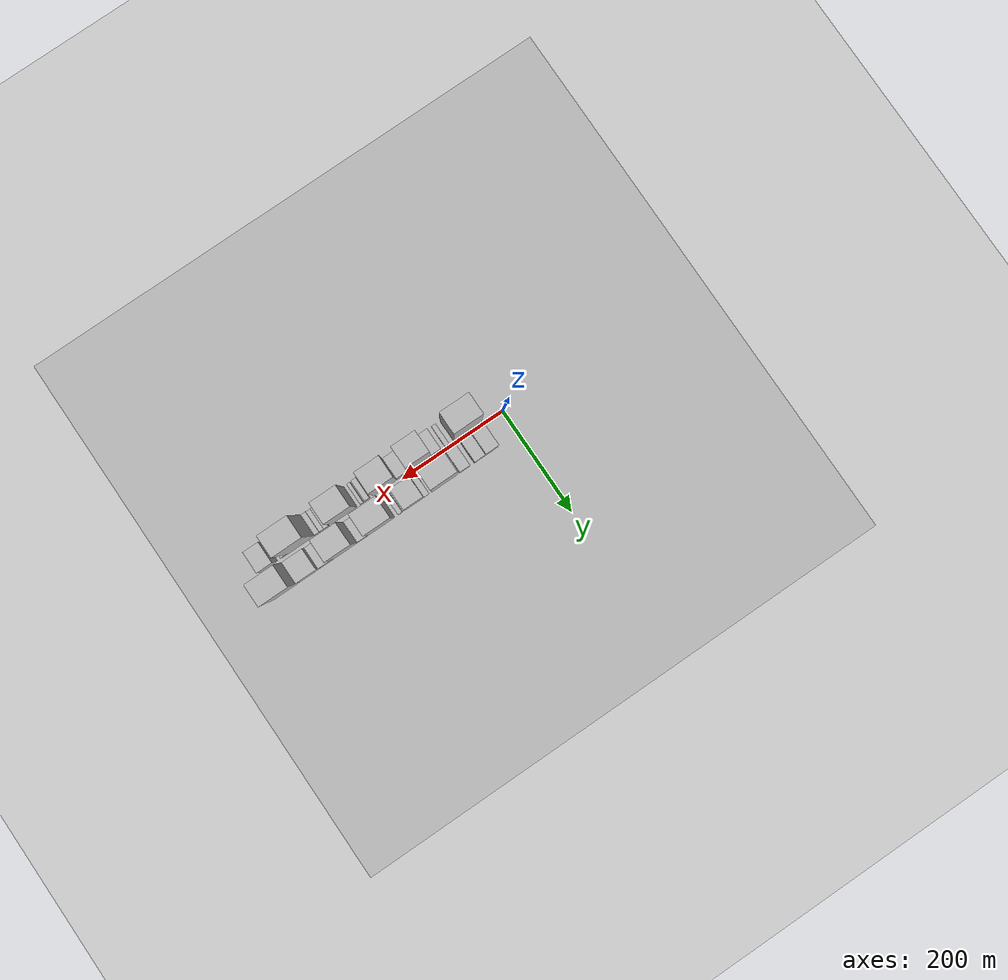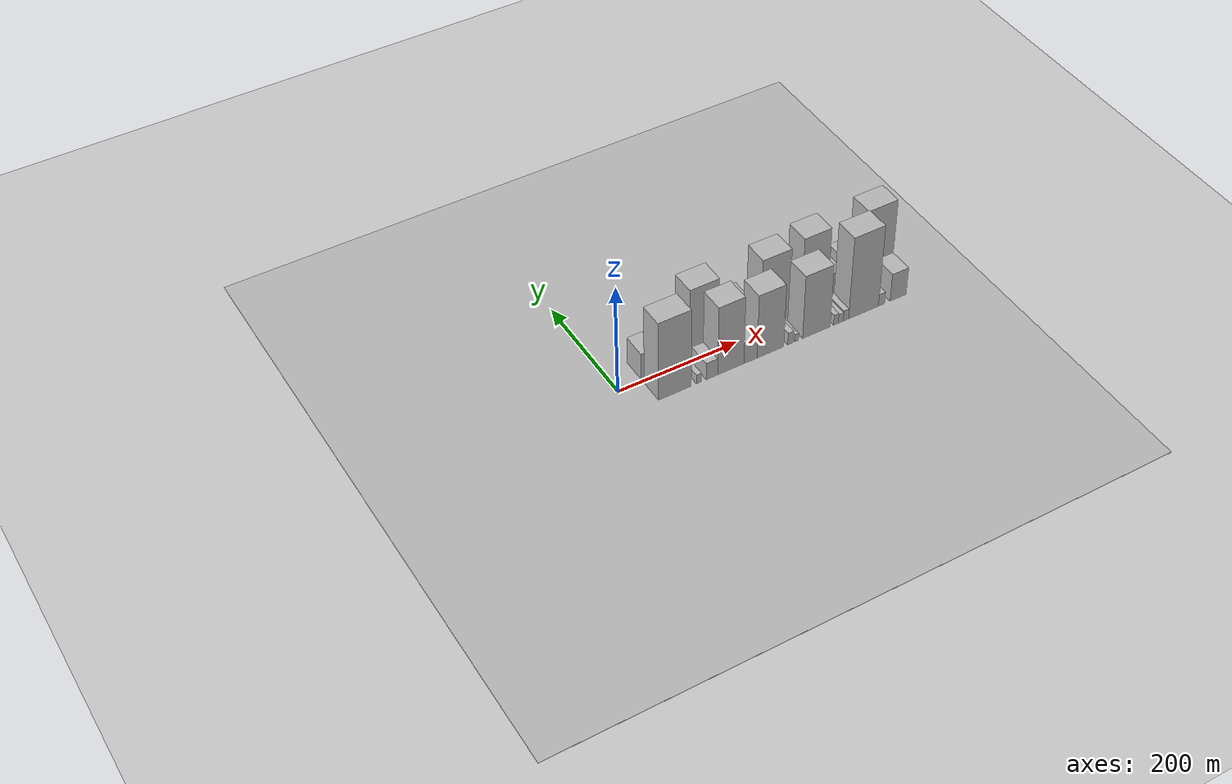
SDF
<?xml version="1.0" encoding="utf-8"?>

<sdf version="1.6">

   <world name="default">

      <gui fullscreen="0">

         <camera name="user_camera">

            <pose>-15 0 4.57585 0 0 0</pose>

            <view_controller>orbit</view_controller>

         </camera>

      </gui>

      <scene>

         <sky>

           <clouds>

             <speed>12</speed>

           </clouds>

         </sky>

         <ambient>0.4 0.4 0.4 1</ambient>

         <background>0.7 0.7 0.7 1</background>

         <shadows>1</shadows>

      </scene>

      <gravity>0 0 -9.8066</gravity>

      <magnetic_field>6e-06 2.3e-05 -4.2e-05</magnetic_field>

      <physics default="0" name="default_physics" type="ode">

         <ode>

            <solver>

               <type>quick</type>

               <iters>10</iters>

               <sor>1.0</sor>

               <use_dynamic_moi_rescaling>0</use_dynamic_moi_rescaling>

            </solver>

            <constraints>

               <cfm>0</cfm>

               <erp>0.2</erp>

               <contact_max_correcting_vel>100</contact_max_correcting_vel>

               <contact_surface_layer>0.001</contact_surface_layer>

            </constraints>

         </ode>

         <max_step_size>0.004</max_step_size>

         <real_time_factor>1</real_time_factor>

         <real_time_update_rate>250</real_time_update_rate>

      </physics>

      <light name="sun" type="directional">

         <cast_shadows>1</cast_shadows>

         <pose>0 0 10 0 0 0</pose>

         <diffuse>0.8 0.8 0.8 1</diffuse>

         <specular>0.2 0.2 0.2 1</specular>

         <attenuation>

            <range>1000</range>

            <constant>0.9</constant>

            <linear>0.01</linear>

            <quadratic>0.001</quadratic>

         </attenuation>

         <direction>-0.5 0.1 -0.9</direction>

      </light>

      <include>

         <name>ground_plane_1</name>

         <uri>model://HANNAS_ground_plane</uri>

         <pose>0 0 0  0 0 0</pose>

      </include>

      <include>

         <name>ground_plane_2</name>

         <uri>model://HANNAS_ground_plane</uri>

         <pose>100 0 0  0 0 0</pose>

      </include>

      <model name="building_1">

         <static>1</static>

         <pose frame="">52.8574 24.5000 0 0.000000 0.000000 1.570796</pose>

         <link name="link">

            <pose frame="">0 0 25.50 0 0 0</pose>

            <collision name="collision">

               <geometry>

                  <box>

                     <size>40.0000 25.7147 51.0000</size>

                  </box>

               </geometry>

               <max_contacts>10</max_contacts>

               <surface>

                  <contact>

                     <ode/>

                  </contact>

                  <bounce/>

                  <friction>

                     <torsional>

                        <ode/>

                     </torsional>

                     <ode/>

                  </friction>

               </surface>

            </collision>

            <visual name="visual">

               <cast_shadows>0</cast_shadows>

               <geometry>

                  <box>

                     <size>40.0000 25.7147 51.0000</size>

                  </box>

               </geometry>

               <material>

                  <script>

                     <uri>model://HANNAS_wall/materials/scripts</uri>

                     <uri>model://HANNAS_wall/materials/textures</uri>

                     <name>vrc/HANNAS_wall</name>

                  </script>

               </material>

            </visual>

            <self_collide>0</self_collide>

            <enable_wind>0</enable_wind>

            <kinematic>0</kinematic>

         </link>

      </model>

      <model name="building_2">

         <static>1</static>

         <pose frame="">76.3778 24.5000 0 0.000000 0.000000 1.570796</pose>

         <link name="link">

            <pose frame="">0 0 18.00 0 0 0</pose>

            <collision name="collision">

               <geometry>

                  <box>

                     <size>40.0000 21.3261 36.0000</size>

                  </box>

               </geometry>

               <max_contacts>10</max_contacts>

               <surface>

                  <contact>

                     <ode/>

                  </contact>

                  <bounce/>

                  <friction>

                     <torsional>

                        <ode/>

                     </torsional>

                     <ode/>

                  </friction>

               </surface>

            </collision>

            <visual name="visual">

               <cast_shadows>0</cast_shadows>

               <geometry>

                  <box>

                     <size>40.0000 21.3261 36.0000</size>

                  </box>

               </geometry>

               <material>

                  <script>

                     <uri>model://HANNAS_wall/materials/scripts</uri>

                     <uri>model://HANNAS_wall/materials/textures</uri>

                     <name>vrc/HANNAS_wall</name>

                  </script>

               </material>

            </visual>

            <self_collide>0</self_collide>

            <enable_wind>0</enable_wind>

            <kinematic>0</kinematic>

         </link>

      </model>

      <model name="building_3">

         <static>1</static>

         <pose frame="">106.2204 24.5000 0 0.000000 0.000000 1.570796</pose>

         <link name="link">

            <pose frame="">0 0 19.50 0 0 0</pose>

            <collision name="collision">

               <geometry>

                  <box>

                     <size>40.0000 20.3591 39.0000</size>

                  </box>

               </geometry>

               <max_contacts>10</max_contacts>

               <surface>

                  <contact>

                     <ode/>

                  </contact>

                  <bounce/>

                  <friction>

                     <torsional>

                        <ode/>

                     </torsional>

                     <ode/>

                  </friction>

               </surface>

            </collision>

            <visual name="visual">

               <cast_shadows>0</cast_shadows>

               <geometry>

                  <box>

                     <size>40.0000 20.3591 39.0000</size>

                  </box>

               </geometry>

               <material>

                  <script>

                     <uri>model://HANNAS_wall/materials/scripts</uri>

                     <uri>model://HANNAS_wall/materials/textures</uri>

                     <name>vrc/HANNAS_wall</name>

                  </script>

               </material>

            </visual>

            <self_collide>0</self_collide>

            <enable_wind>0</enable_wind>

            <kinematic>0</kinematic>

         </link>

      </model>

      <model name="building_4">

         <static>1</static>

         <pose frame="">146.4142 24.5000 0 0.000000 0.000000 1.570796</pose>

         <link name="link">

            <pose frame="">0 0 67.50 0 0 0</pose>

            <collision name="collision">

               <geometry>

                  <box>

                     <size>40.0000 50.0285 135.0000</size>

                  </box>

               </geometry>

               <max_contacts>10</max_contacts>

               <surface>

                  <contact>

                     <ode/>

                  </contact>

                  <bounce/>

                  <friction>

                     <torsional>

                        <ode/>

                     </torsional>

                     <ode/>

                  </friction>

               </surface>

            </collision>

            <visual name="visual">

               <cast_shadows>0</cast_shadows>

               <geometry>

                  <box>

                     <size>40.0000 50.0285 135.0000</size>

                  </box>

               </geometry>

               <material>

                  <script>

                     <uri>model://HANNAS_wall/materials/scripts</uri>

                     <uri>model://HANNAS_wall/materials/textures</uri>

                     <name>vrc/HANNAS_wall</name>

                  </script>

               </material>

            </visual>

            <self_collide>0</self_collide>

            <enable_wind>0</enable_wind>

            <kinematic>0</kinematic>

         </link>

      </model>

      <model name="building_5">

         <static>1</static>

         <pose frame="">181.6122 24.5000 0 0.000000 0.000000 1.570796</pose>

         <link name="link">

            <pose frame="">0 0 10.50 0 0 0</pose>

            <collision name="collision">

               <geometry>

                  <box>

                     <size>40.0000 10.3676 21.0000</size>

                  </box>

               </geometry>

               <max_contacts>10</max_contacts>

               <surface>

                  <contact>

                     <ode/>

                  </contact>

                  <bounce/>

                  <friction>

                     <torsional>

                        <ode/>

                     </torsional>

                     <ode/>

                  </friction>

               </surface>

            </collision>

            <visual name="visual">

               <cast_shadows>0</cast_shadows>

               <geometry>

                  <box>

                     <size>40.0000 10.3676 21.0000</size>

                  </box>

               </geometry>

               <material>

                  <script>

                     <uri>model://HANNAS_wall/materials/scripts</uri>

                     <uri>model://HANNAS_wall/materials/textures</uri>

                     <name>vrc/HANNAS_wall</name>

                  </script>

               </material>

            </visual>

            <self_collide>0</self_collide>

            <enable_wind>0</enable_wind>

            <kinematic>0</kinematic>

         </link>

      </model>

      <model name="building_6">

         <static>1</static>

         <pose frame="">205.6074 24.5000 0 0.000000 0.000000 1.570796</pose>

         <link name="link">

            <pose frame="">0 0 36.00 0 0 0</pose>

            <collision name="collision">

               <geometry>

                  <box>

                     <size>40.0000 37.6228 72.0000</size>

                  </box>

               </geometry>

               <max_contacts>10</max_contacts>

               <surface>

                  <contact>

                     <ode/>

                  </contact>

                  <bounce/>

                  <friction>

                     <torsional>

                        <ode/>

                     </torsional>

                     <ode/>

                  </friction>

               </surface>

            </collision>

            <visual name="visual">

               <cast_shadows>0</cast_shadows>

               <geometry>

                  <box>

                     <size>40.0000 37.6228 72.0000</size>

                  </box>

               </geometry>

               <material>

                  <script>

                     <uri>model://HANNAS_wall/materials/scripts</uri>

                     <uri>model://HANNAS_wall/materials/textures</uri>

                     <name>vrc/HANNAS_wall</name>

                  </script>

               </material>

            </visual>

            <self_collide>0</self_collide>

            <enable_wind>0</enable_wind>

            <kinematic>0</kinematic>

         </link>

      </model>

      <model name="building_7">

         <static>1</static>

         <pose frame="">233.5622 24.5000 0 0.000000 0.000000 1.570796</pose>

         <link name="link">

            <pose frame="">0 0 9.00 0 0 0</pose>

            <collision name="collision">

               <geometry>

                  <box>

                     <size>40.0000 8.2868 18.0000</size>

                  </box>

               </geometry>

               <max_contacts>10</max_contacts>

               <surface>

                  <contact>

                     <ode/>

                  </contact>

                  <bounce/>

                  <friction>

                     <torsional>

                        <ode/>

                     </torsional>

                     <ode/>

                  </friction>

               </surface>

            </collision>

            <visual name="visual">

               <cast_shadows>0</cast_shadows>

               <geometry>

                  <box>

                     <size>40.0000 8.2868 18.0000</size>

                  </box>

               </geometry>

               <material>

                  <script>

                     <uri>model://HANNAS_wall/materials/scripts</uri>

                     <uri>model://HANNAS_wall/materials/textures</uri>

                     <name>vrc/HANNAS_wall</name>

                  </script>

               </material>

            </visual>

            <self_collide>0</self_collide>

            <enable_wind>0</enable_wind>

            <kinematic>0</kinematic>

         </link>

      </model>

      <model name="building_8">

         <static>1</static>

         <pose frame="">269.6419 24.5000 0 0.000000 0.000000 1.570796</pose>

         <link name="link">

            <pose frame="">0 0 67.50 0 0 0</pose>

            <collision name="collision">

               <geometry>

                  <box>

                     <size>40.0000 49.8725 135.0000</size>

                  </box>

               </geometry>

               <max_contacts>10</max_contacts>

               <surface>

                  <contact>

                     <ode/>

                  </contact>

                  <bounce/>

                  <friction>

                     <torsional>

                        <ode/>

                     </torsional>

                     <ode/>

                  </friction>

               </surface>

            </collision>

            <visual name="visual">

               <cast_shadows>0</cast_shadows>

               <geometry>

                  <box>

                     <size>40.0000 49.8725 135.0000</size>

                  </box>

               </geometry>

               <material>

                  <script>

                     <uri>model://HANNAS_wall/materials/scripts</uri>

                     <uri>model://HANNAS_wall/materials/textures</uri>

                     <name>vrc/HANNAS_wall</name>

                  </script>

               </material>

            </visual>

            <self_collide>0</self_collide>

            <enable_wind>0</enable_wind>

            <kinematic>0</kinematic>

         </link>

      </model>

      <model name="building_9">

         <static>1</static>

         <pose frame="">306.7515 24.5000 0 0.000000 0.000000 1.570796</pose>

         <link name="link">

            <pose frame="">0 0 18.00 0 0 0</pose>

            <collision name="collision">

               <geometry>

                  <box>

                     <size>40.0000 18.3467 36.0000</size>

                  </box>

               </geometry>

               <max_contacts>10</max_contacts>

               <surface>

                  <contact>

                     <ode/>

                  </contact>

                  <bounce/>

                  <friction>

                     <torsional>

                        <ode/>

                     </torsional>

                     <ode/>

                  </friction>

               </surface>

            </collision>

            <visual name="visual">

               <cast_shadows>0</cast_shadows>

               <geometry>

                  <box>

                     <size>40.0000 18.3467 36.0000</size>

                  </box>

               </geometry>

               <material>

                  <script>

                     <uri>model://HANNAS_wall/materials/scripts</uri>

                     <uri>model://HANNAS_wall/materials/textures</uri>

                     <name>vrc/HANNAS_wall</name>

                  </script>

               </material>

            </visual>

            <self_collide>0</self_collide>

            <enable_wind>0</enable_wind>

            <kinematic>0</kinematic>

         </link>

      </model>

      <model name="building_10">

         <static>1</static>

         <pose frame="">339.5666 24.5000 0 0.000000 0.000000 1.570796</pose>

         <link name="link">

            <pose frame="">0 0 72.00 0 0 0</pose>

            <collision name="collision">

               <geometry>

                  <box>

                     <size>40.0000 47.2835 144.0000</size>

                  </box>

               </geometry>

               <max_contacts>10</max_contacts>

               <surface>

                  <contact>

                     <ode/>

                  </contact>

                  <bounce/>

                  <friction>

                     <torsional>

                        <ode/>

                     </torsional>

                     <ode/>

                  </friction>

               </surface>

            </collision>

            <visual name="visual">

               <cast_shadows>0</cast_shadows>

               <geometry>

                  <box>

                     <size>40.0000 47.2835 144.0000</size>

                  </box>

               </geometry>

               <material>

                  <script>

                     <uri>model://HANNAS_wall/materials/scripts</uri>

                     <uri>model://HANNAS_wall/materials/textures</uri>

                     <name>vrc/HANNAS_wall</name>

                  </script>

               </material>

            </visual>

            <self_collide>0</self_collide>

            <enable_wind>0</enable_wind>

            <kinematic>0</kinematic>

         </link>

      </model>

      <model name="building_11">

         <static>1</static>

         <pose frame="">376.2026 24.5000 0 0.000000 0.000000 1.570796</pose>

         <link name="link">

            <pose frame="">0 0 25.50 0 0 0</pose>

            <collision name="collision">

               <geometry>

                  <box>

                     <size>40.0000 25.9887 51.0000</size>

                  </box>

               </geometry>

               <max_contacts>10</max_contacts>

               <surface>

                  <contact>

                     <ode/>

                  </contact>

                  <bounce/>

                  <friction>

                     <torsional>

                        <ode/>

                     </torsional>

                     <ode/>

                  </friction>

               </surface>

            </collision>

            <visual name="visual">

               <cast_shadows>0</cast_shadows>

               <geometry>

                  <box>

                     <size>40.0000 25.9887 51.0000</size>

                  </box>

               </geometry>

               <material>

                  <script>

                     <uri>model://HANNAS_wall/materials/scripts</uri>

                     <uri>model://HANNAS_wall/materials/textures</uri>

                     <name>vrc/HANNAS_wall</name>

                  </script>

               </material>

            </visual>

            <self_collide>0</self_collide>

            <enable_wind>0</enable_wind>

            <kinematic>0</kinematic>

         </link>

      </model>

      <model name="building_12">

         <static>1</static>

         <pose frame="">408.6125 24.5000 0 0.000000 0.000000 1.570796</pose>

         <link name="link">

            <pose frame="">0 0 36.00 0 0 0</pose>

            <collision name="collision">

               <geometry>

                  <box>

                     <size>40.0000 38.8311 72.0000</size>

                  </box>

               </geometry>

               <max_contacts>10</max_contacts>

               <surface>

                  <contact>

                     <ode/>

                  </contact>

                  <bounce/>

                  <friction>

                     <torsional>

                        <ode/>

                     </torsional>

                     <ode/>

                  </friction>

               </surface>

            </collision>

            <visual name="visual">

               <cast_shadows>0</cast_shadows>

               <geometry>

                  <box>

                     <size>40.0000 38.8311 72.0000</size>

                  </box>

               </geometry>

               <material>

                  <script>

                     <uri>model://HANNAS_wall/materials/scripts</uri>

                     <uri>model://HANNAS_wall/materials/textures</uri>

                     <name>vrc/HANNAS_wall</name>

                  </script>

               </material>

            </visual>

            <self_collide>0</self_collide>

            <enable_wind>0</enable_wind>

            <kinematic>0</kinematic>

         </link>

      </model>

      <model name="building_13">

         <static>1</static>

         <pose frame="">454.2972 24.5000 0 0.000000 0.000000 1.570796</pose>

         <link name="link">

            <pose frame="">0 0 73.50 0 0 0</pose>

            <collision name="collision">

               <geometry>

                  <box>

                     <size>40.0000 52.5383 147.0000</size>

                  </box>

               </geometry>

               <max_contacts>10</max_contacts>

               <surface>

                  <contact>

                     <ode/>

                  </contact>

                  <bounce/>

                  <friction>

                     <torsional>

                        <ode/>

                     </torsional>

                     <ode/>

                  </friction>

               </surface>

            </collision>

            <visual name="visual">

               <cast_shadows>0</cast_shadows>

               <geometry>

                  <box>

                     <size>40.0000 52.5383 147.0000</size>

                  </box>

               </geometry>

               <material>

                  <script>

                     <uri>model://HANNAS_wall/materials/scripts</uri>

                     <uri>model://HANNAS_wall/materials/textures</uri>

                     <name>vrc/HANNAS_wall</name>

                  </script>

               </material>

            </visual>

            <self_collide>0</self_collide>

            <enable_wind>0</enable_wind>

            <kinematic>0</kinematic>

         </link>

      </model>

      <model name="building_14">

         <static>1</static>

         <pose frame="">67.3060 -24.5000 0 0.000000 0.000000 1.570796</pose>

         <link name="link">

            <pose frame="">0 0 75.00 0 0 0</pose>

            <collision name="collision">

               <geometry>

                  <box>

                     <size>40.0000 54.6119 150.0000</size>

                  </box>

               </geometry>

               <max_contacts>10</max_contacts>

               <surface>

                  <contact>

                     <ode/>

                  </contact>

                  <bounce/>

                  <friction>

                     <torsional>

                        <ode/>

                     </torsional>

                     <ode/>

                  </friction>

               </surface>

            </collision>

            <visual name="visual">

               <cast_shadows>0</cast_shadows>

               <geometry>

                  <box>

                     <size>40.0000 54.6119 150.0000</size>

                  </box>

               </geometry>

               <material>

                  <script>

                     <uri>model://HANNAS_wall/materials/scripts</uri>

                     <uri>model://HANNAS_wall/materials/textures</uri>

                     <name>vrc/HANNAS_wall</name>

                  </script>

               </material>

            </visual>

            <self_collide>0</self_collide>

            <enable_wind>0</enable_wind>

            <kinematic>0</kinematic>

         </link>

      </model>

      <model name="building_15">

         <static>1</static>

         <pose frame="">107.7562 -24.5000 0 0.000000 0.000000 1.570796</pose>

         <link name="link">

            <pose frame="">0 0 9.00 0 0 0</pose>

            <collision name="collision">

               <geometry>

                  <box>

                     <size>40.0000 8.2885 18.0000</size>

                  </box>

               </geometry>

               <max_contacts>10</max_contacts>

               <surface>

                  <contact>

                     <ode/>

                  </contact>

                  <bounce/>

                  <friction>

                     <torsional>

                        <ode/>

                     </torsional>

                     <ode/>

                  </friction>

               </surface>

            </collision>

            <visual name="visual">

               <cast_shadows>0</cast_shadows>

               <geometry>

                  <box>

                     <size>40.0000 8.2885 18.0000</size>

                  </box>

               </geometry>

               <material>

                  <script>

                     <uri>model://HANNAS_wall/materials/scripts</uri>

                     <uri>model://HANNAS_wall/materials/textures</uri>

                     <name>vrc/HANNAS_wall</name>

                  </script>

               </material>

            </visual>

            <self_collide>0</self_collide>

            <enable_wind>0</enable_wind>

            <kinematic>0</kinematic>

         </link>

      </model>

      <model name="building_16">

         <static>1</static>

         <pose frame="">129.6216 -24.5000 0 0.000000 0.000000 1.570796</pose>

         <link name="link">

            <pose frame="">0 0 16.50 0 0 0</pose>

            <collision name="collision">

               <geometry>

                  <box>

                     <size>40.0000 19.4424 33.0000</size>

                  </box>

               </geometry>

               <max_contacts>10</max_contacts>

               <surface>

                  <contact>

                     <ode/>

                  </contact>

                  <bounce/>

                  <friction>

                     <torsional>

                        <ode/>

                     </torsional>

                     <ode/>

                  </friction>

               </surface>

            </collision>

            <visual name="visual">

               <cast_shadows>0</cast_shadows>

               <geometry>

                  <box>

                     <size>40.0000 19.4424 33.0000</size>

                  </box>

               </geometry>

               <material>

                  <script>

                     <uri>model://HANNAS_wall/materials/scripts</uri>

                     <uri>model://HANNAS_wall/materials/textures</uri>

                     <name>vrc/HANNAS_wall</name>

                  </script>

               </material>

            </visual>

            <self_collide>0</self_collide>

            <enable_wind>0</enable_wind>

            <kinematic>0</kinematic>

         </link>

      </model>

      <model name="building_17">

         <static>1</static>

         <pose frame="">161.6816 -24.5000 0 0.000000 0.000000 1.570796</pose>

         <link name="link">

            <pose frame="">0 0 66.00 0 0 0</pose>

            <collision name="collision">

               <geometry>

                  <box>

                     <size>40.0000 44.6776 132.0000</size>

                  </box>

               </geometry>

               <max_contacts>10</max_contacts>

               <surface>

                  <contact>

                     <ode/>

                  </contact>

                  <bounce/>

                  <friction>

                     <torsional>

                        <ode/>

                     </torsional>

                     <ode/>

                  </friction>

               </surface>

            </collision>

            <visual name="visual">

               <cast_shadows>0</cast_shadows>

               <geometry>

                  <box>

                     <size>40.0000 44.6776 132.0000</size>

                  </box>

               </geometry>

               <material>

                  <script>

                     <uri>model://HANNAS_wall/materials/scripts</uri>

                     <uri>model://HANNAS_wall/materials/textures</uri>

                     <name>vrc/HANNAS_wall</name>

                  </script>

               </material>

            </visual>

            <self_collide>0</self_collide>

            <enable_wind>0</enable_wind>

            <kinematic>0</kinematic>

         </link>

      </model>

      <model name="building_18">

         <static>1</static>

         <pose frame="">195.4065 -24.5000 0 0.000000 0.000000 1.570796</pose>

         <link name="link">

            <pose frame="">0 0 21.00 0 0 0</pose>

            <collision name="collision">

               <geometry>

                  <box>

                     <size>40.0000 22.7721 42.0000</size>

                  </box>

               </geometry>

               <max_contacts>10</max_contacts>

               <surface>

                  <contact>

                     <ode/>

                  </contact>

                  <bounce/>

                  <friction>

                     <torsional>

                        <ode/>

                     </torsional>

                     <ode/>

                  </friction>

               </surface>

            </collision>

            <visual name="visual">

               <cast_shadows>0</cast_shadows>

               <geometry>

                  <box>

                     <size>40.0000 22.7721 42.0000</size>

                  </box>

               </geometry>

               <material>

                  <script>

                     <uri>model://HANNAS_wall/materials/scripts</uri>

                     <uri>model://HANNAS_wall/materials/textures</uri>

                     <name>vrc/HANNAS_wall</name>

                  </script>

               </material>

            </visual>

            <self_collide>0</self_collide>

            <enable_wind>0</enable_wind>

            <kinematic>0</kinematic>

         </link>

      </model>

      <model name="building_19">

         <static>1</static>

         <pose frame="">230.0039 -24.5000 0 0.000000 0.000000 1.570796</pose>

         <link name="link">

            <pose frame="">0 0 61.50 0 0 0</pose>

            <collision name="collision">

               <geometry>

                  <box>

                     <size>40.0000 46.4227 123.0000</size>

                  </box>

               </geometry>

               <max_contacts>10</max_contacts>

               <surface>

                  <contact>

                     <ode/>

                  </contact>

                  <bounce/>

                  <friction>

                     <torsional>

                        <ode/>

                     </torsional>

                     <ode/>

                  </friction>

               </surface>

            </collision>

            <visual name="visual">

               <cast_shadows>0</cast_shadows>

               <geometry>

                  <box>

                     <size>40.0000 46.4227 123.0000</size>

                  </box>

               </geometry>

               <material>

                  <script>

                     <uri>model://HANNAS_wall/materials/scripts</uri>

                     <uri>model://HANNAS_wall/materials/textures</uri>

                     <name>vrc/HANNAS_wall</name>

                  </script>

               </material>

            </visual>

            <self_collide>0</self_collide>

            <enable_wind>0</enable_wind>

            <kinematic>0</kinematic>

         </link>

      </model>

      <model name="building_20">

         <static>1</static>

         <pose frame="">265.1530 -24.5000 0 0.000000 0.000000 1.570796</pose>

         <link name="link">

            <pose frame="">0 0 12.00 0 0 0</pose>

            <collision name="collision">

               <geometry>

                  <box>

                     <size>40.0000 9.8754 24.0000</size>

                  </box>

               </geometry>

               <max_contacts>10</max_contacts>

               <surface>

                  <contact>

                     <ode/>

                  </contact>

                  <bounce/>

                  <friction>

                     <torsional>

                        <ode/>

                     </torsional>

                     <ode/>

                  </friction>

               </surface>

            </collision>

            <visual name="visual">

               <cast_shadows>0</cast_shadows>

               <geometry>

                  <box>

                     <size>40.0000 9.8754 24.0000</size>

                  </box>

               </geometry>

               <material>

                  <script>

                     <uri>model://HANNAS_wall/materials/scripts</uri>

                     <uri>model://HANNAS_wall/materials/textures</uri>

                     <name>vrc/HANNAS_wall</name>

                  </script>

               </material>

            </visual>

            <self_collide>0</self_collide>

            <enable_wind>0</enable_wind>

            <kinematic>0</kinematic>

         </link>

      </model>

      <model name="building_21">

         <static>1</static>

         <pose frame="">276.1723 -24.5000 0 0.000000 0.000000 1.570796</pose>

         <link name="link">

            <pose frame="">0 0 7.50 0 0 0</pose>

            <collision name="collision">

               <geometry>

                  <box>

                     <size>40.0000 6.1632 15.0000</size>

                  </box>

               </geometry>

               <max_contacts>10</max_contacts>

               <surface>

                  <contact>

                     <ode/>

                  </contact>

                  <bounce/>

                  <friction>

                     <torsional>

                        <ode/>

                     </torsional>

                     <ode/>

                  </friction>

               </surface>

            </collision>

            <visual name="visual">

               <cast_shadows>0</cast_shadows>

               <geometry>

                  <box>

                     <size>40.0000 6.1632 15.0000</size>

                  </box>

               </geometry>

               <material>

                  <script>

                     <uri>model://HANNAS_wall/materials/scripts</uri>

                     <uri>model://HANNAS_wall/materials/textures</uri>

                     <name>vrc/HANNAS_wall</name>

                  </script>

               </material>

            </visual>

            <self_collide>0</self_collide>

            <enable_wind>0</enable_wind>

            <kinematic>0</kinematic>

         </link>

      </model>

      <model name="building_22">

         <static>1</static>

         <pose frame="">310.7134 -24.5000 0 0.000000 0.000000 1.570796</pose>

         <link name="link">

            <pose frame="">0 0 61.50 0 0 0</pose>

            <collision name="collision">

               <geometry>

                  <box>

                     <size>40.0000 48.9192 123.0000</size>

                  </box>

               </geometry>

               <max_contacts>10</max_contacts>

               <surface>

                  <contact>

                     <ode/>

                  </contact>

                  <bounce/>

                  <friction>

                     <torsional>

                        <ode/>

                     </torsional>

                     <ode/>

                  </friction>

               </surface>

            </collision>

            <visual name="visual">

               <cast_shadows>0</cast_shadows>

               <geometry>

                  <box>

                     <size>40.0000 48.9192 123.0000</size>

                  </box>

               </geometry>

               <material>

                  <script>

                     <uri>model://HANNAS_wall/materials/scripts</uri>

                     <uri>model://HANNAS_wall/materials/textures</uri>

                     <name>vrc/HANNAS_wall</name>

                  </script>

               </material>

            </visual>

            <self_collide>0</self_collide>

            <enable_wind>0</enable_wind>

            <kinematic>0</kinematic>

         </link>

      </model>

      <model name="building_23">

         <static>1</static>

         <pose frame="">345.5357 -24.5000 0 0.000000 0.000000 1.570796</pose>

         <link name="link">

            <pose frame="">0 0 10.50 0 0 0</pose>

            <collision name="collision">

               <geometry>

                  <box>

                     <size>40.0000 8.7254 21.0000</size>

                  </box>

               </geometry>

               <max_contacts>10</max_contacts>

               <surface>

                  <contact>

                     <ode/>

                  </contact>

                  <bounce/>

                  <friction>

                     <torsional>

                        <ode/>

                     </torsional>

                     <ode/>

                  </friction>

               </surface>

            </collision>

            <visual name="visual">

               <cast_shadows>0</cast_shadows>

               <geometry>

                  <box>

                     <size>40.0000 8.7254 21.0000</size>

                  </box>

               </geometry>

               <material>

                  <script>

                     <uri>model://HANNAS_wall/materials/scripts</uri>

                     <uri>model://HANNAS_wall/materials/textures</uri>

                     <name>vrc/HANNAS_wall</name>

                  </script>

               </material>

            </visual>

            <self_collide>0</self_collide>

            <enable_wind>0</enable_wind>

            <kinematic>0</kinematic>

         </link>

      </model>

      <model name="building_24">

         <static>1</static>

         <pose frame="">354.3602 -24.5000 0 0.000000 0.000000 1.570796</pose>

         <link name="link">

            <pose frame="">0 0 9.00 0 0 0</pose>

            <collision name="collision">

               <geometry>

                  <box>

                     <size>40.0000 8.9235 18.0000</size>

                  </box>

               </geometry>

               <max_contacts>10</max_contacts>

               <surface>

                  <contact>

                     <ode/>

                  </contact>

                  <bounce/>

                  <friction>

                     <torsional>

                        <ode/>

                     </torsional>

                     <ode/>

                  </friction>

               </surface>

            </collision>

            <visual name="visual">

               <cast_shadows>0</cast_shadows>

               <geometry>

                  <box>

                     <size>40.0000 8.9235 18.0000</size>

                  </box>

               </geometry>

               <material>

                  <script>

                     <uri>model://HANNAS_wall/materials/scripts</uri>

                     <uri>model://HANNAS_wall/materials/textures</uri>

                     <name>vrc/HANNAS_wall</name>

                  </script>

               </material>

            </visual>

            <self_collide>0</self_collide>

            <enable_wind>0</enable_wind>

            <kinematic>0</kinematic>

         </link>

      </model>

      <model name="building_25">

         <static>1</static>

         <pose frame="">363.5271 -24.5000 0 0.000000 0.000000 1.570796</pose>

         <link name="link">

            <pose frame="">0 0 10.50 0 0 0</pose>

            <collision name="collision">

               <geometry>

                  <box>

                     <size>40.0000 9.4104 21.0000</size>

                  </box>

               </geometry>

               <max_contacts>10</max_contacts>

               <surface>

                  <contact>

                     <ode/>

                  </contact>

                  <bounce/>

                  <friction>

                     <torsional>

                        <ode/>

                     </torsional>

                     <ode/>

                  </friction>

               </surface>

            </collision>

            <visual name="visual">

               <cast_shadows>0</cast_shadows>

               <geometry>

                  <box>

                     <size>40.0000 9.4104 21.0000</size>

                  </box>

               </geometry>

               <material>

                  <script>

                     <uri>model://HANNAS_wall/materials/scripts</uri>

                     <uri>model://HANNAS_wall/materials/textures</uri>

                     <name>vrc/HANNAS_wall</name>

                  </script>

               </material>

            </visual>

            <self_collide>0</self_collide>

            <enable_wind>0</enable_wind>

            <kinematic>0</kinematic>

         </link>

      </model>

      <model name="building_26">

         <static>1</static>

         <pose frame="">395.3194 -24.5000 0 0.000000 0.000000 1.570796</pose>

         <link name="link">

            <pose frame="">0 0 79.50 0 0 0</pose>

            <collision name="collision">

               <geometry>

                  <box>

                     <size>40.0000 54.1742 159.0000</size>

                  </box>

               </geometry>

               <max_contacts>10</max_contacts>

               <surface>

                  <contact>

                     <ode/>

                  </contact>

                  <bounce/>

                  <friction>

                     <torsional>

                        <ode/>

                     </torsional>

                     <ode/>

                  </friction>

               </surface>

            </collision>

            <visual name="visual">

               <cast_shadows>0</cast_shadows>

               <geometry>

                  <box>

                     <size>40.0000 54.1742 159.0000</size>

                  </box>

               </geometry>

               <material>

                  <script>

                     <uri>model://HANNAS_wall/materials/scripts</uri>

                     <uri>model://HANNAS_wall/materials/textures</uri>

                     <name>vrc/HANNAS_wall</name>

                  </script>

               </material>

            </visual>

            <self_collide>0</self_collide>

            <enable_wind>0</enable_wind>

            <kinematic>0</kinematic>

         </link>

      </model>

      <model name="building_27">

         <static>1</static>

         <pose frame="">427.9627 -24.5000 0 0.000000 0.000000 1.570796</pose>

         <link name="link">

            <pose frame="">0 0 12.00 0 0 0</pose>

            <collision name="collision">

               <geometry>

                  <box>

                     <size>40.0000 11.1124 24.0000</size>

                  </box>

               </geometry>

               <max_contacts>10</max_contacts>

               <surface>

                  <contact>

                     <ode/>

                  </contact>

                  <bounce/>

                  <friction>

                     <torsional>

                        <ode/>

                     </torsional>

                     <ode/>

                  </friction>

               </surface>

            </collision>

            <visual name="visual">

               <cast_shadows>0</cast_shadows>

               <geometry>

                  <box>

                     <size>40.0000 11.1124 24.0000</size>

                  </box>

               </geometry>

               <material>

                  <script>

                     <uri>model://HANNAS_wall/materials/scripts</uri>

                     <uri>model://HANNAS_wall/materials/textures</uri>

                     <name>vrc/HANNAS_wall</name>

                  </script>

               </material>

            </visual>

            <self_collide>0</self_collide>

            <enable_wind>0</enable_wind>

            <kinematic>0</kinematic>

         </link>

      </model>

      <model name="building_28">

         <static>1</static>

         <pose frame="">458.2869 -24.5000 0 0.000000 0.000000 1.570796</pose>

         <link name="link">

            <pose frame="">0 0 27.00 0 0 0</pose>

            <collision name="collision">

               <geometry>

                  <box>

                     <size>40.0000 29.5361 54.0000</size>

                  </box>

               </geometry>

               <max_contacts>10</max_contacts>

               <surface>

                  <contact>

                     <ode/>

                  </contact>

                  <bounce/>

                  <friction>

                     <torsional>

                        <ode/>

                     </torsional>

                     <ode/>

                  </friction>

               </surface>

            </collision>

            <visual name="visual">

               <cast_shadows>0</cast_shadows>

               <geometry>

                  <box>

                     <size>40.0000 29.5361 54.0000</size>

                  </box>

               </geometry>

               <material>

                  <script>

                     <uri>model://HANNAS_wall/materials/scripts</uri>

                     <uri>model://HANNAS_wall/materials/textures</uri>

                     <name>vrc/HANNAS_wall</name>

                  </script>

               </material>

            </visual>

            <self_collide>0</self_collide>

            <enable_wind>0</enable_wind>

            <kinematic>0</kinematic>

         </link>

      </model>

   </world>

</sdf>

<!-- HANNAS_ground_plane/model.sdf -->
<sdf version="1.4">
<model name="HANNAS_ground_plane">
  <static>true</static>
    <link name="link">
      <collision name="collision">
        <geometry>
          <plane>
            <normal>0 0 1</normal>
            <size>1000 1000</size>
          </plane>
        </geometry>
        <surface>
          <friction>
            <ode>
              <mu>100</mu>
              <mu2>50</mu2>
            </ode>
          </friction>
        </surface>
      </collision>
      <visual name="visual">
        <cast_shadows>false</cast_shadows>
        <geometry>
          <plane>
            <normal>0 0 1</normal>
            <size>1000 1000</size>
          </plane>
        </geometry>
        <material>
          <script>
            <uri>model://HANNAS_ground_plane/materials/scripts/HANNAS_ground_plane.material</uri>
	    <uri>model://HANNAS_ground_plane/materials/textures</uri>
            <name>HANNASGroundPlane/Image</name>
          </script>
        </material>
      </visual>
    </link>
  </model>
</sdf>
